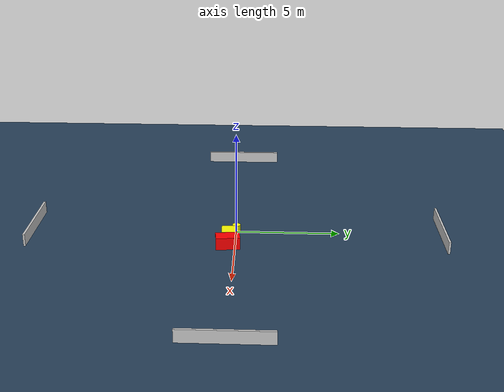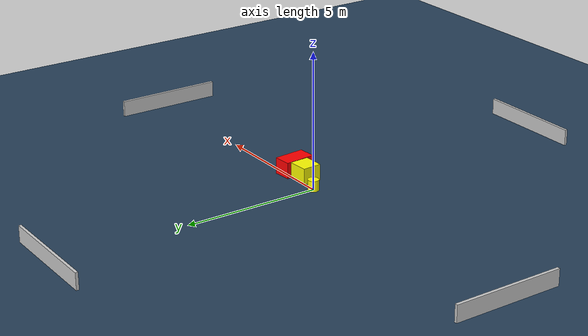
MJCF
<?xml version="1.0" ?>
<mujoco model="generated_environment">
  <option timestep="0.01" integrator="RK4" cone="elliptic"/>
  <default>
    <geom density="1"/>
  </default>
  <asset>
    <texture builtin="gradient" height="3072" name="skybox" rgb1="0.3 0.5 0.7" rgb2="0 0 0" type="skybox" width="512"/>
    <texture builtin="checker" height="300" name="groundplane" rgb1="0.2 0.3 0.4" rgb2="0.1 0.2 0.3" type="2d" width="300"/>
    <material name="groundplane" reflectance="0.2" texrepeat="5 5" texture="groundplane"/>
  </asset>
  <worldbody>
    <light dir="0 0 -1" directional="true" pos="0 0 1.5"/>
    <geom condim="3" friction="0.5 0.005 0.001" material="groundplane" name="floor" pos="0 0 0" size="0 0 0.05" type="plane"/>
    <body name="walls">
      <geom name="wall_1" condim="4" pos="-10.0 0.0 0.3" rgba="0.800000011920929 0.800000011920929 0.800000011920929 1.0" size="0.05 2.0 0.3" type="box"/>
      <geom name="wall_2" condim="4" pos="10.0 0.0 0.3" rgba="0.800000011920929 0.800000011920929 0.800000011920929 1.0" size="0.05 2.0 0.3" type="box"/>
      <geom name="wall_3" condim="4" pos="0.0 -10.0 0.3" rgba="0.800000011920929 0.800000011920929 0.800000011920929 1.0" size="2.0 0.05 0.3" type="box"/>
      <geom name="wall_4" condim="4" pos="0.0 10.0 0.3" rgba="0.800000011920929 0.800000011920929 0.800000011920929 1.0" size="2.0 0.05 0.3" type="box"/>
    </body>
    <body name="robot">
      <joint name="joint_x" type="slide" pos="0 0 0" axis="1 0 0"/>
      <joint name="joint_y" type="slide" pos="0 0 0" axis="0 1 0"/>
      <geom name="robot" type="cylinder" pos="0.0 0.0 0.2" size="0.2 0.2 0.0" mass="5.0" friction="1.0 0.005 0.0001" condim="4" rgba="1.0 1.0 0.0 1.0"/>
    </body>
    <body name="obstacle_1_movable">
      <geom name="obstacle_1_movable" condim="4" pos="0.9215708541255473 -0.31091445876625906 0.3" euler="0 0 92.84367324144068" friction="0.0 0.005 0.001" rgba="1.0 1.0 0.0 1.0" size="0.3533272815128252 0.37460705353503343 0.3" type="box" mass="0.1"/>
      <joint type="free"/>
    </body>
    <body name="obstacle_2_static">
      <geom name="obstacle_2_static" condim="4" pos="1.6575947217616642 -0.3466300777507603 0.3" euler="0 0 274.7303003933141" friction="0.0 0.005 0.001" rgba="1.0 0.0 0.0 1.0" size="0.5747468922850227 0.3308205230062652 0.3" type="box"/>
    </body>
  </worldbody>
  <actuator>
    <motor name="actuator_x" joint="joint_x" gear="1" ctrlrange="-1 1"/>
    <motor name="actuator_y" joint="joint_y" gear="1" ctrlrange="-1 1"/>
  </actuator>
</mujoco>
